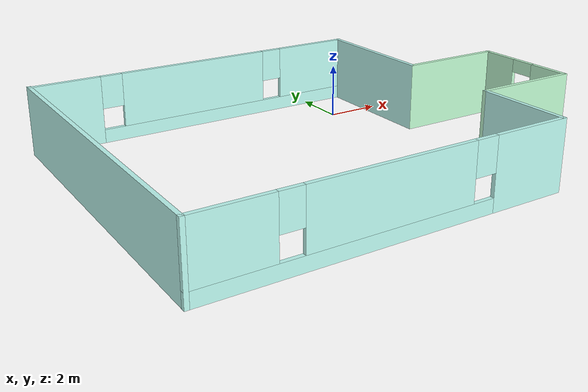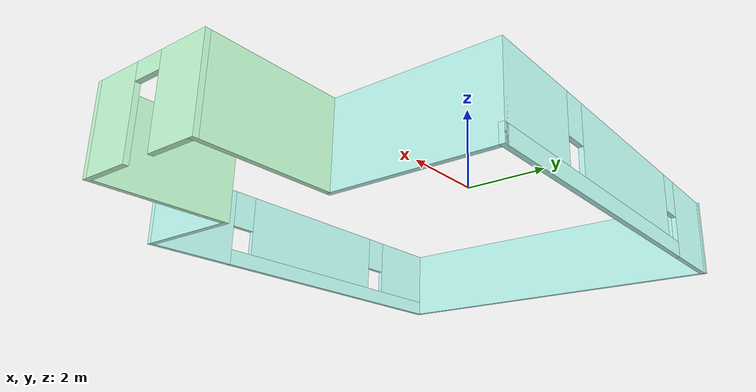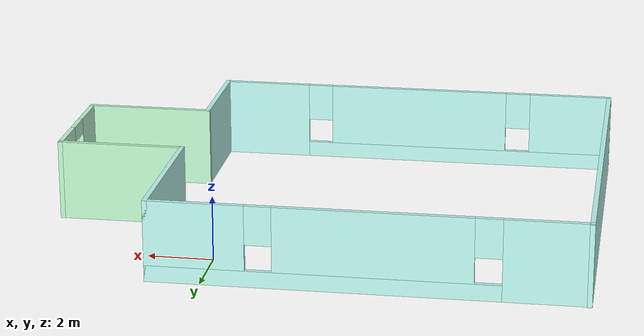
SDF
<?xml version='1.0'?>
<sdf version='1.6'>
  <model name='myBuilding'>
    <pose frame=''>-2.92629 -4.07439 0 0 -0 0</pose>
    <link name='Wall_0'>
      <pose frame=''>-1.925 6 0 0 -0 0</pose>
      <visual name='Wall_0_Visual_0'>
        <pose frame=''>-5.21569 0 1.25 0 -0 0</pose>
        <geometry>
          <box>
            <size>2.56862 0.15 2.5</size>
          </box>
        </geometry>
        <material>
          <script>
            <uri>file://media/materials/scripts/gazebo.material</uri>
            <name>Gazebo/Grey</name>
          </script>
          <ambient>0.756863 1 0.964706 1</ambient>
        </material>
        <meta>
          <layer>0</layer>
        </meta>
      </visual>
      <collision name='Wall_0_Collision_0'>
        <geometry>
          <box>
            <size>2.56862 0.15 2.5</size>
          </box>
        </geometry>
        <pose frame=''>-5.21569 0 1.25 0 -0 0</pose>
      </collision>
      <visual name='Wall_0_Visual_1'>
        <pose frame=''>1.28431 0 0.25 0 -0 0</pose>
        <geometry>
          <box>
            <size>10.4314 0.15 0.5</size>
          </box>
        </geometry>
        <material>
          <script>
            <uri>file://media/materials/scripts/gazebo.material</uri>
            <name>Gazebo/Grey</name>
          </script>
          <ambient>0.756863 1 0.964706 1</ambient>
        </material>
        <meta>
          <layer>0</layer>
        </meta>
      </visual>
      <collision name='Wall_0_Collision_1'>
        <geometry>
          <box>
            <size>10.4314 0.15 0.5</size>
          </box>
        </geometry>
        <pose frame=''>1.28431 0 0.25 0 -0 0</pose>
      </collision>
      <visual name='Wall_0_Visual_2'>
        <pose frame=''>-0.206357 0 1.5 0 -0 0</pose>
        <geometry>
          <box>
            <size>5.85005 0.15 2</size>
          </box>
        </geometry>
        <material>
          <script>
            <uri>file://media/materials/scripts/gazebo.material</uri>
            <name>Gazebo/Grey</name>
          </script>
          <ambient>0.756863 1 0.964706 1</ambient>
        </material>
        <meta>
          <layer>0</layer>
        </meta>
      </visual>
      <collision name='Wall_0_Collision_2'>
        <geometry>
          <box>
            <size>5.85005 0.15 2</size>
          </box>
        </geometry>
        <pose frame=''>-0.206357 0 1.5 0 -0 0</pose>
      </collision>
      <visual name='Wall_0_Visual_3'>
        <pose frame=''>5.00933 0 1.5 0 -0 0</pose>
        <geometry>
          <box>
            <size>2.98133 0.15 2</size>
          </box>
        </geometry>
        <material>
          <script>
            <uri>file://media/materials/scripts/gazebo.material</uri>
            <name>Gazebo/Grey</name>
          </script>
          <ambient>0.756863 1 0.964706 1</ambient>
        </material>
        <meta>
          <layer>0</layer>
        </meta>
      </visual>
      <collision name='Wall_0_Collision_3'>
        <geometry>
          <box>
            <size>2.98133 0.15 2</size>
          </box>
        </geometry>
        <pose frame=''>5.00933 0 1.5 0 -0 0</pose>
      </collision>
      <visual name='Wall_0_Visual_4'>
        <pose frame=''>-3.53138 0 1.9 0 -0 0</pose>
        <geometry>
          <box>
            <size>0.8 0.15 1.2</size>
          </box>
        </geometry>
        <material>
          <script>
            <uri>file://media/materials/scripts/gazebo.material</uri>
            <name>Gazebo/Grey</name>
          </script>
          <ambient>0.756863 1 0.964706 1</ambient>
        </material>
        <meta>
          <layer>0</layer>
        </meta>
      </visual>
      <collision name='Wall_0_Collision_4'>
        <geometry>
          <box>
            <size>0.8 0.15 1.2</size>
          </box>
        </geometry>
        <pose frame=''>-3.53138 0 1.9 0 -0 0</pose>
      </collision>
      <visual name='Wall_0_Visual_5'>
        <pose frame=''>3.11867 0 1.9 0 -0 0</pose>
        <geometry>
          <box>
            <size>0.8 0.15 1.2</size>
          </box>
        </geometry>
        <material>
          <script>
            <uri>file://media/materials/scripts/gazebo.material</uri>
            <name>Gazebo/Grey</name>
          </script>
          <ambient>0.756863 1 0.964706 1</ambient>
        </material>
        <meta>
          <layer>0</layer>
        </meta>
      </visual>
      <collision name='Wall_0_Collision_5'>
        <geometry>
          <box>
            <size>0.8 0.15 1.2</size>
          </box>
        </geometry>
        <pose frame=''>3.11867 0 1.9 0 -0 0</pose>
      </collision>
    </link>
    <link name='Wall_1'>
      <collision name='Wall_1_Collision'>
        <geometry>
          <box>
            <size>5 0.15 2.5</size>
          </box>
        </geometry>
        <pose frame=''>0 0 1.25 0 -0 0</pose>
      </collision>
      <visual name='Wall_1_Visual'>
        <pose frame=''>0 0 1.25 0 -0 0</pose>
        <geometry>
          <box>
            <size>5 0.15 2.5</size>
          </box>
        </geometry>
        <material>
          <script>
            <uri>file://media/materials/scripts/gazebo.material</uri>
            <name>Gazebo/Grey</name>
          </script>
          <ambient>0.756863 1 0.964706 1</ambient>
        </material>
        <meta>
          <layer>0</layer>
        </meta>
      </visual>
      <pose frame=''>4.5 3.575 0 0 0 -1.5708</pose>
    </link>
    <link name='Wall_2'>
      <collision name='Wall_2_Collision'>
        <geometry>
          <box>
            <size>4 0.15 2.5</size>
          </box>
        </geometry>
        <pose frame=''>0 0 1.25 0 -0 0</pose>
      </collision>
      <visual name='Wall_2_Visual'>
        <pose frame=''>0 0 1.25 0 -0 0</pose>
        <geometry>
          <box>
            <size>4 0.15 2.5</size>
          </box>
        </geometry>
        <material>
          <script>
            <uri>file://media/materials/scripts/gazebo.material</uri>
            <name>Gazebo/Grey</name>
          </script>
          <ambient>0.768627 1 0.835294 1</ambient>
        </material>
        <meta>
          <layer>0</layer>
        </meta>
      </visual>
      <pose frame=''>6.425 1.15 0 0 -0 0</pose>
    </link>
    <link name='Wall_3'>
      <pose frame=''>8.35 -0.774999 0 0 0 -1.5708</pose>
      <visual name='Wall_3_Visual_0'>
        <pose frame=''>-1.24503 0 1.25 0 -0 0</pose>
        <geometry>
          <box>
            <size>1.50994 0.15 2.5</size>
          </box>
        </geometry>
        <material>
          <script>
            <uri>file://media/materials/scripts/gazebo.material</uri>
            <name>Gazebo/Grey</name>
          </script>
          <ambient>0.768627 1 0.835294 1</ambient>
        </material>
        <meta>
          <layer>0</layer>
        </meta>
      </visual>
      <collision name='Wall_3_Collision_0'>
        <geometry>
          <box>
            <size>1.50994 0.15 2.5</size>
          </box>
        </geometry>
        <pose frame=''>-1.24503 0 1.25 0 -0 0</pose>
      </collision>
      <visual name='Wall_3_Visual_1'>
        <pose frame=''>1.20497 0 1.25 0 -0 0</pose>
        <geometry>
          <box>
            <size>1.59006 0.15 2.5</size>
          </box>
        </geometry>
        <material>
          <script>
            <uri>file://media/materials/scripts/gazebo.material</uri>
            <name>Gazebo/Grey</name>
          </script>
          <ambient>0.768627 1 0.835294 1</ambient>
        </material>
        <meta>
          <layer>0</layer>
        </meta>
      </visual>
      <collision name='Wall_3_Collision_1'>
        <geometry>
          <box>
            <size>1.59006 0.15 2.5</size>
          </box>
        </geometry>
        <pose frame=''>1.20497 0 1.25 0 -0 0</pose>
      </collision>
      <visual name='Wall_3_Visual_2'>
        <pose frame=''>-0.040058 0 2.25 0 -0 0</pose>
        <geometry>
          <box>
            <size>0.9 0.15 0.5</size>
          </box>
        </geometry>
        <material>
          <script>
            <uri>file://media/materials/scripts/gazebo.material</uri>
            <name>Gazebo/Grey</name>
          </script>
          <ambient>0.768627 1 0.835294 1</ambient>
        </material>
        <meta>
          <layer>0</layer>
        </meta>
      </visual>
      <collision name='Wall_3_Collision_2'>
        <geometry>
          <box>
            <size>0.9 0.15 0.5</size>
          </box>
        </geometry>
        <pose frame=''>-0.040058 0 2.25 0 -0 0</pose>
      </collision>
    </link>
    <link name='Wall_4'>
      <collision name='Wall_4_Collision'>
        <geometry>
          <box>
            <size>4 0.15 2.5</size>
          </box>
        </geometry>
        <pose frame=''>0 0 1.25 0 -0 0</pose>
      </collision>
      <visual name='Wall_4_Visual'>
        <pose frame=''>0 0 1.25 0 -0 0</pose>
        <geometry>
          <box>
            <size>4 0.15 2.5</size>
          </box>
        </geometry>
        <material>
          <script>
            <uri>file://media/materials/scripts/gazebo.material</uri>
            <name>Gazebo/Grey</name>
          </script>
          <ambient>0.768627 1 0.835294 1</ambient>
        </material>
        <meta>
          <layer>0</layer>
        </meta>
      </visual>
      <pose frame=''>6.425 -2.7 0 0 -0 3.14159</pose>
    </link>
    <link name='Wall_5'>
      <collision name='Wall_5_Collision'>
        <geometry>
          <box>
            <size>3.5 0.15 2.5</size>
          </box>
        </geometry>
        <pose frame=''>0 0 1.25 0 -0 0</pose>
      </collision>
      <visual name='Wall_5_Visual'>
        <pose frame=''>0 0 1.25 0 -0 0</pose>
        <geometry>
          <box>
            <size>3.5 0.15 2.5</size>
          </box>
        </geometry>
        <material>
          <script>
            <uri>file://media/materials/scripts/gazebo.material</uri>
            <name>Gazebo/Grey</name>
          </script>
          <ambient>0.756863 1 0.964706 1</ambient>
        </material>
        <meta>
          <layer>0</layer>
        </meta>
      </visual>
      <pose frame=''>4.5 -4.375 0 0 0 -1.5708</pose>
    </link>
    <link name='Wall_6'>
      <pose frame=''>-1.925 -6.05 0 0 -0 3.14159</pose>
      <visual name='Wall_6_Visual_0'>
        <pose frame=''>-5.06253 0 1.25 0 -0 0</pose>
        <geometry>
          <box>
            <size>2.87493 0.15 2.5</size>
          </box>
        </geometry>
        <material>
          <script>
            <uri>file://media/materials/scripts/gazebo.material</uri>
            <name>Gazebo/Grey</name>
          </script>
          <ambient>0.756863 1 0.964706 1</ambient>
        </material>
        <meta>
          <layer>0</layer>
        </meta>
      </visual>
      <collision name='Wall_6_Collision_0'>
        <geometry>
          <box>
            <size>2.87493 0.15 2.5</size>
          </box>
        </geometry>
        <pose frame=''>-5.06253 0 1.25 0 -0 0</pose>
      </collision>
      <visual name='Wall_6_Visual_1'>
        <pose frame=''>1.43747 0 0.25 0 -0 0</pose>
        <geometry>
          <box>
            <size>10.1251 0.15 0.5</size>
          </box>
        </geometry>
        <material>
          <script>
            <uri>file://media/materials/scripts/gazebo.material</uri>
            <name>Gazebo/Grey</name>
          </script>
          <ambient>0.756863 1 0.964706 1</ambient>
        </material>
        <meta>
          <layer>0</layer>
        </meta>
      </visual>
      <collision name='Wall_6_Collision_1'>
        <geometry>
          <box>
            <size>10.1251 0.15 0.5</size>
          </box>
        </geometry>
        <pose frame=''>1.43747 0 0.25 0 -0 0</pose>
      </collision>
      <visual name='Wall_6_Visual_2'>
        <pose frame=''>0.099956 0 1.5 0 -0 0</pose>
        <geometry>
          <box>
            <size>5.85005 0.15 2</size>
          </box>
        </geometry>
        <material>
          <script>
            <uri>file://media/materials/scripts/gazebo.material</uri>
            <name>Gazebo/Grey</name>
          </script>
          <ambient>0.756863 1 0.964706 1</ambient>
        </material>
        <meta>
          <layer>0</layer>
        </meta>
      </visual>
      <collision name='Wall_6_Collision_2'>
        <geometry>
          <box>
            <size>5.85005 0.15 2</size>
          </box>
        </geometry>
        <pose frame=''>0.099956 0 1.5 0 -0 0</pose>
      </collision>
      <visual name='Wall_6_Visual_3'>
        <pose frame=''>5.16249 0 1.5 0 -0 0</pose>
        <geometry>
          <box>
            <size>2.67502 0.15 2</size>
          </box>
        </geometry>
        <material>
          <script>
            <uri>file://media/materials/scripts/gazebo.material</uri>
            <name>Gazebo/Grey</name>
          </script>
          <ambient>0.756863 1 0.964706 1</ambient>
        </material>
        <meta>
          <layer>0</layer>
        </meta>
      </visual>
      <collision name='Wall_6_Collision_3'>
        <geometry>
          <box>
            <size>2.67502 0.15 2</size>
          </box>
        </geometry>
        <pose frame=''>5.16249 0 1.5 0 -0 0</pose>
      </collision>
      <visual name='Wall_6_Visual_4'>
        <pose frame=''>-3.22507 0 1.9 0 -0 0</pose>
        <geometry>
          <box>
            <size>0.8 0.15 1.2</size>
          </box>
        </geometry>
        <material>
          <script>
            <uri>file://media/materials/scripts/gazebo.material</uri>
            <name>Gazebo/Grey</name>
          </script>
          <ambient>0.756863 1 0.964706 1</ambient>
        </material>
        <meta>
          <layer>0</layer>
        </meta>
      </visual>
      <collision name='Wall_6_Collision_4'>
        <geometry>
          <box>
            <size>0.8 0.15 1.2</size>
          </box>
        </geometry>
        <pose frame=''>-3.22507 0 1.9 0 -0 0</pose>
      </collision>
      <visual name='Wall_6_Visual_5'>
        <pose frame=''>3.42498 0 1.9 0 -0 0</pose>
        <geometry>
          <box>
            <size>0.8 0.15 1.2</size>
          </box>
        </geometry>
        <material>
          <script>
            <uri>file://media/materials/scripts/gazebo.material</uri>
            <name>Gazebo/Grey</name>
          </script>
          <ambient>0.756863 1 0.964706 1</ambient>
        </material>
        <meta>
          <layer>0</layer>
        </meta>
      </visual>
      <collision name='Wall_6_Collision_5'>
        <geometry>
          <box>
            <size>0.8 0.15 1.2</size>
          </box>
        </geometry>
        <pose frame=''>3.42498 0 1.9 0 -0 0</pose>
      </collision>
    </link>
    <link name='Wall_7'>
      <collision name='Wall_7_Collision'>
        <geometry>
          <box>
            <size>12.25 0.15 2.5</size>
          </box>
        </geometry>
        <pose frame=''>0 0 1.25 0 -0 0</pose>
      </collision>
      <visual name='Wall_7_Visual'>
        <pose frame=''>0 0 1.25 0 -0 0</pose>
        <geometry>
          <box>
            <size>12.25 0.15 2.5</size>
          </box>
        </geometry>
        <material>
          <script>
            <uri>file://media/materials/scripts/gazebo.material</uri>
            <name>Gazebo/Grey</name>
          </script>
          <ambient>0.756863 1 0.964706 1</ambient>
        </material>
        <meta>
          <layer>0</layer>
        </meta>
      </visual>
      <pose frame=''>-8.35 0 0 0 -0 1.5708</pose>
    </link>
    <static>1</static>
  </model>
</sdf>
